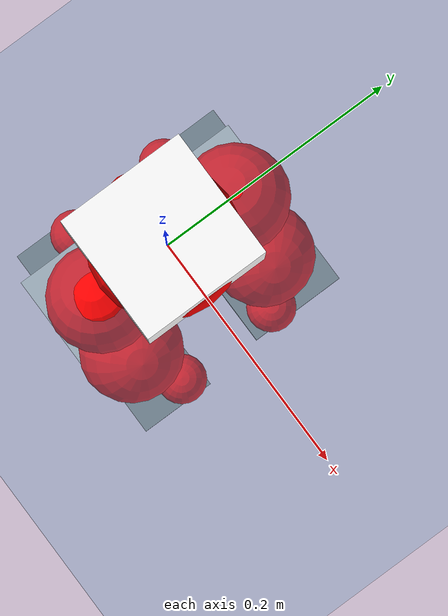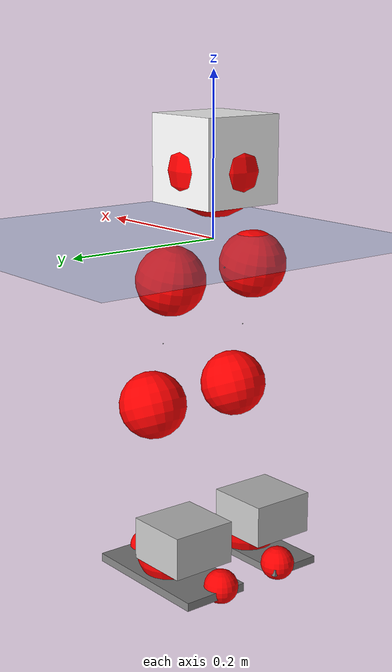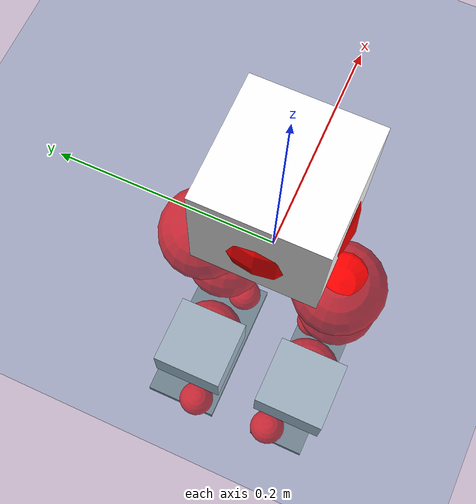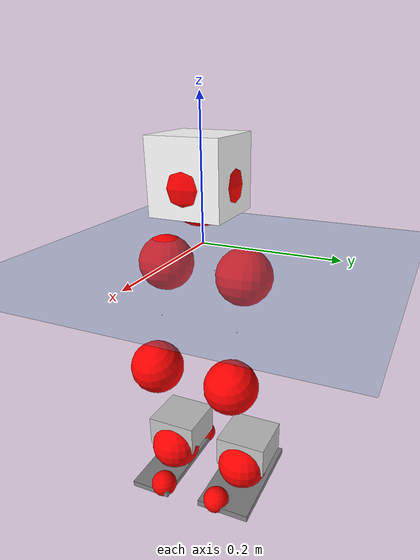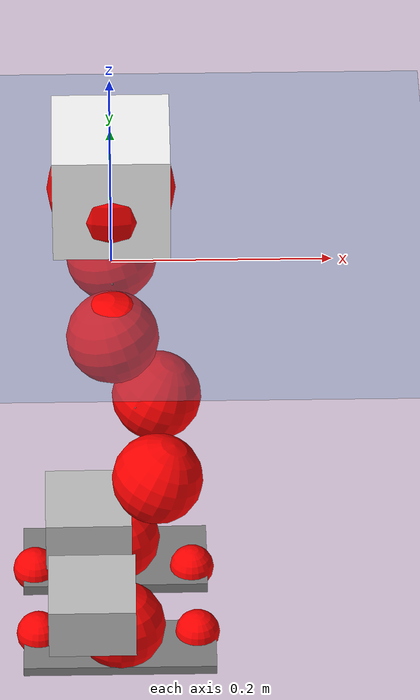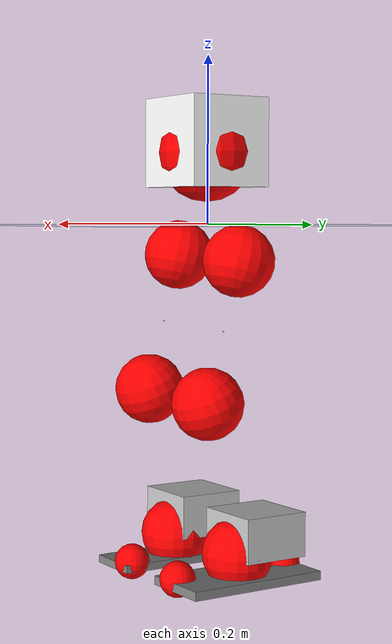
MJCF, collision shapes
<mujoco model="pi_12dof_release_v1">
  <compiler angle="radian" assetdir="assets" balanceinertia="true" inertiafromgeom="false"/>

  <option timestep="0.005" density="1.2" viscosity="2e-05"/>

  <size nkey="1"/>

  <visual>
    <quality shadowsize="8192"/>
    <map shadowclip="0.5"/>
  </visual>

  <default>
    <default class="/">
      <joint armature="0.01" damping="0.01" frictionloss="0.01"/>
      <geom contype="0" conaffinity="0" group="1" solref="-1000 -80"/>
      <site size="0.01 0.005 0.005" group="5"/>
      <general forcelimited="true" biastype="affine" gainprm="20" biasprm="0 -20 -0.5"/>
      <default class="foot">
        <geom size="0.0845 0.036 0.005" type="box" condim="6" group="4" priority="1" friction="0.9 0.2 0.2" solimp="0.015 1 0.005"/>
      </default>
      <default class="reward_collision_sphere">
        <geom group="5" rgba="1 0 0 1"/>
      </default>
    </default>
  </default>

  <asset>
    <texture type="skybox" colorspace="auto" name="//unnamed_texture_0" builtin="gradient" rgb1="0.95 0.95 0.95" rgb2="0.95 0.95 0.95" width="100" height="600"/>
    <texture type="2d" colorspace="auto" name="texplane" builtin="checker" rgb1="0.345 0.575 0.748" rgb2="0.345 0.575 0.748" markrgb="1 1 1" width="512" height="512"/>
    <material name="MatPlane" class="/" texture="texplane" texuniform="true" texrepeat="2 2" specular="0.9"/>
    <mesh name="baselink_1" class="/" file="baselink_1.STL"/>
    <mesh name="r_hip_pitch_link" class="/" file="r_hip_pitch_link.STL"/>
    <mesh name="r_hip_roll_link" class="/" file="r_hip_roll_link.STL"/>
    <mesh name="r_thigh_link" class="/" file="r_thigh_link.STL"/>
    <mesh name="r_calf_link" class="/" file="r_calf_link.STL"/>
    <mesh name="r_ankle_pitch_link" class="/" file="r_ankle_pitch_link.STL"/>
    <mesh name="r_ankle_roll_link" class="/" file="r_ankle_roll_link.STL"/>
    <mesh name="l_hip_pitch_link" class="/" file="l_hip_pitch_link.STL"/>
    <mesh name="l_hip_roll_link" class="/" file="l_hip_roll_link.STL"/>
    <mesh name="l_thigh_link" class="/" file="l_thigh_link.STL"/>
    <mesh name="l_calf_link" class="/" file="l_calf_link.STL"/>
    <mesh name="l_ankle_pitch_link" class="/" file="l_ankle_pitch_link.STL"/>
    <mesh name="l_ankle_roll_link" class="/" file="l_ankle_roll_link.STL"/>
  </asset>

  <worldbody>
    <geom name="floor" class="/" size="100 100 0.125" type="plane" group="0" material="MatPlane"/>
    <light name="toplight_shadow" class="/" pos="0 0 5" dir="0.0990148 0.0990148 -0.990148" type="directional" ambient="0.04 0.04 0.04" diffuse="0.55 0.55 0.55" specular="0.12 0.12 0.12"/>
    <light name="toplight_fill" class="/" pos="0 0 5" dir="0.0990148 0.0990148 -0.990148" type="directional" castshadow="false" ambient="0.04 0.04 0.04" diffuse="0.3 0.3 0.3" specular="0.08 0.08 0.08"/>
    <body name="trunk" pos="0.000331983 -0.00237715 1.14668e-05" quat="1 -3.89512e-05 3.52534e-06 -1.07923e-05">
      <inertial pos="0.0019357 -0.00306673 0.0487109" quat="0.693775 0.00508477 0.0208 0.719873" mass="2.49426" diaginertia="0.0167521 0.0037197 0.0105938"/>
      <joint name="//unnamed_joint_0" type="free"/>
      <geom name="//unnamed_geom_1" class="/" type="mesh" density="0" rgba="1 1 1 1" mesh="baselink_1"/>
      <geom name="//unnamed_geom_2" class="/" size="0.0527167 0.0527167 0.0527167" pos="0 0 0.0965205" type="box" rgba="1 1 1 1"/>
      <geom name="//unnamed_geom_3" class="reward_collision_sphere" size="0.0579884" pos="0 0 0.0844554"/>
      <site name="imu" class="/" pos="0.0113523 0.00577714 -0.0118511" size="0.0105433"/>
      <camera name="track" class="/" pos="0 -1.68132 0" quat="0.707107 0.707107 0 0" mode="trackcom"/>
      <camera name="ego_camera" class="/" pos="0.083688 0 0.217171" quat="-0.5 -0.5 0.5 0.5"/>
      <body name="r_hip_pitch_link" pos="0.00104483 -0.0166888 -0.0372232" quat="0.992062 -0.000381745 -0.125745 -0.000213362">
        <inertial pos="0.00116876 -0.0466158 0.0012173" quat="-0.0191051 0.706658 -0.0278201 0.70675" mass="0.418568" diaginertia="0.000187497 3.94818e-05 0.000212964"/>
        <joint name="r_hip_pitch_joint" class="/" pos="0 0 0" axis="-0.00200932 -0.999982 -0.00560845" stiffness="0.000145994" range="-1.75596 1.22742" armature="0.0107411" damping="0.0127381" frictionloss="0.0110947"/>
        <geom name="//unnamed_geom_4" class="/" type="mesh" density="0" rgba="0.75294 0.75294 0.75294 1" mesh="r_hip_pitch_link"/>
        <geom name="//unnamed_geom_5" class="/" size="0.000527167 0.000527167 0.000527167" type="box" rgba="0.75294 0.75294 0.75294 1"/>
        <body name="r_hip_roll_link" pos="-0.00124213 -0.0446024 -0.000370387" quat="0.999999 -0.00040868 -0.0010181 0.000111515">
          <inertial pos="0.000997452 0.0012805 -0.0744931" quat="0.706124 -0.0831833 -0.069843 0.699708" mass="0.455106" diaginertia="0.00058104 0.000117855 0.00033383"/>
          <joint name="r_hip_roll_joint" class="/" pos="0 0 0" axis="-0.999969 -0.00672526 0.00419454" range="-0.125207 0.54769" armature="0.00951219" damping="0.0113209" frictionloss="0.0103534"/>
          <geom name="//unnamed_geom_6" class="/" type="mesh" density="0" rgba="0.75294 0.75294 0.75294 1" mesh="r_hip_roll_link"/>
          <geom name="//unnamed_geom_7" class="/" size="0.000527167 0.000527167 0.000527167" type="box" rgba="0.75294 0.75294 0.75294 1"/>
          <geom name="//unnamed_geom_8" class="reward_collision_sphere" size="0.0421734"/>
          <body name="r_thigh_link" pos="-0.000736148 -0.0021881 -0.0835765" quat="1 -0.000540904 0.000293974 0.000201711">
            <inertial pos="0.00245892 0.000613493 -0.0598977" quat="0.736498 0.676439 0.00046925 0.000998402" mass="0.132326" diaginertia="0.000209039 4.09218e-05 0.000142482"/>
            <joint name="r_thigh_joint" class="/" pos="0 0 0" axis="-0.00518814 0.00060669 -0.999986" range="-0.341575 0.59703" armature="0.0105268" damping="0.00560374" frictionloss="0.0105062"/>
            <geom name="//unnamed_geom_9" class="/" type="mesh" density="0" rgba="0.75294 0.75294 0.75294 1" mesh="r_thigh_link"/>
            <geom name="//unnamed_geom_10" class="/" size="0.000527167 0.000527167 0.000527167" type="box" rgba="0.75294 0.75294 0.75294 1"/>
            <body name="r_calf_link" pos="-0.0017341 -0.00153368 -0.0850154" quat="0.947673 -0.000180579 0.319244 -4.51347e-05">
              <inertial pos="-0.000342035 -0.00187307 -0.0852692" quat="0.99997 -0.00484213 -0.000157342 0.00599076" mass="0.922795" diaginertia="0.00615969 0.00142531 0.000460604"/>
              <joint name="r_calf_joint" class="/" pos="0 0 0" axis="0.00476058 -0.999982 0.00368563" range="-1.60073 0.665201" armature="0.0110946" damping="0.00932698" frictionloss="0.0108849"/>
              <geom name="//unnamed_geom_11" class="/" type="mesh" density="0" rgba="0.75294 0.75294 0.75294 1" mesh="r_calf_link"/>
              <geom name="//unnamed_geom_12" class="/" size="0.000527167 0.000527167 0.000527167" type="box" rgba="0.75294 0.75294 0.75294 1"/>
              <geom name="//unnamed_geom_13" class="reward_collision_sphere" size="0.0421734"/>
              <body name="r_ankle_pitch_link" pos="0.00330423 0.00287018 -0.167861" quat="0.980084 -2.88735e-05 -0.198581 4.73351e-05">
                <inertial pos="0.00453009 0.000469706 -0.00033554" quat="0.00051482 0.702333 -0.00132339 0.711847" mass="0.218312" diaginertia="0.000550465 9.59552e-05 0.00031713"/>
                <joint name="r_ankle_pitch_joint" class="/" pos="0 0 0" axis="0.00311974 -0.999897 -0.0140279" range="-1.28679 0.555523" armature="0.0107763" damping="0.0179921" frictionloss="0.0107434"/>
                <geom name="//unnamed_geom_14" class="/" type="mesh" density="0" rgba="0.75294 0.75294 0.75294 1" mesh="r_ankle_pitch_link"/>
                <geom name="//unnamed_geom_15" class="/" size="0.0411191 0.0421734 0.0263584" type="box" rgba="0.75294 0.75294 0.75294 1"/>
                <body name="r_ankle_roll_link" pos="0.082626 0.00138589 -0.00156536" quat="0.999999 -3.85608e-05 0.00114637 -0.000716298">
                  <inertial pos="-0.0266952 -0.000115221 -0.0156048" quat="0.555162 0.430919 0.43282 0.564597" mass="0.608839" diaginertia="0.00193293 0.000432968 0.000718113"/>
                  <joint name="r_ankle_roll_joint" class="/" pos="0 0 0" axis="-0.999998 -0.00137554 -0.00116746" range="-0.203351 0.149738" armature="0.0103444" damping="0.0110083" frictionloss="0.0101395"/>
                  <geom name="//unnamed_geom_16" class="/" type="mesh" density="0" rgba="0.75294 0.75294 0.75294 1" mesh="r_ankle_roll_link"/>
                  <geom name="//unnamed_geom_17" class="/" type="mesh" rgba="0.75294 0.75294 0.75294 1" mesh="r_ankle_roll_link"/>
                  <geom name="right_foot" class="foot" size="0.0911355 0.0335376 0.00466613" pos="-0.0569078 0 -0.0530863"/>
                  <geom name="//unnamed_geom_19" class="reward_collision_sphere" size="0.0421734" pos="-0.055792 0 -0.0241301"/>
                  <geom name="//unnamed_geom_20" class="reward_collision_sphere" size="0.0210867" pos="0.0167376 0.0168132 -0.0482602"/>
                  <geom name="//unnamed_geom_21" class="reward_collision_sphere" size="0.0210867" pos="-0.133901 0.0168132 -0.0482602"/>
                  <site name="right_foot" class="foot" pos="-0.0569078 0 -0.0530863" size="0.0105433"/>
                </body>
              </body>
            </body>
          </body>
        </body>
      </body>
      <body name="l_hip_pitch_link" pos="0.000166876 0.0191415 -0.0398606" quat="0.99216 -1.04896e-05 -0.124976 3.91318e-05">
        <inertial pos="0.00102244 0.0427347 0.000284802" quat="-0.0380405 0.707273 0.0257713 0.705445" mass="0.451874" diaginertia="0.000221798 4.41925e-05 0.000258568"/>
        <joint name="l_hip_pitch_joint" class="/" pos="0 0 0" axis="-0.000397717 1 0.000374794" stiffness="0.00889717" range="-1.25162 1.7536" armature="0.0102001" damping="0" frictionloss="0.0115142"/>
        <geom name="//unnamed_geom_22" class="/" type="mesh" density="0" rgba="0.75294 0.75294 0.75294 1" mesh="l_hip_pitch_link"/>
        <geom name="//unnamed_geom_23" class="/" size="0.000527167 0.000527167 0.000527167" type="box" rgba="0.75294 0.75294 0.75294 1"/>
        <body name="l_hip_roll_link" pos="-0.00100342 0.0473525 -0.0024884" quat="1 -1.68428e-05 8.59956e-05 0.000262164">
          <inertial pos="-0.00228726 3.0613e-05 -0.0762643" quat="0.702526 -0.0791068 -0.0772667 0.703015" mass="0.467761" diaginertia="0.000581097 0.000116066 0.000327093"/>
          <joint name="l_hip_roll_joint" class="/" pos="0 0 0" axis="-0.99995 -0.00272477 -0.00961849" range="-0.555403 0.12478" armature="0.0118555" damping="0.00260831" frictionloss="0.0103633"/>
          <geom name="//unnamed_geom_24" class="/" type="mesh" density="0" rgba="0.75294 0.75294 0.75294 1" mesh="l_hip_roll_link"/>
          <geom name="//unnamed_geom_25" class="/" size="0.000527167 0.000527167 0.000527167" type="box" rgba="0.75294 0.75294 0.75294 1"/>
          <geom name="//unnamed_geom_26" class="reward_collision_sphere" size="0.0421734"/>
          <body name="l_thigh_link" pos="-0.00144318 -0.00285706 -0.0832753" quat="1 0.000275554 -0.000329065 -0.000150118">
            <inertial pos="-3.4911e-05 -0.00119812 -0.0560801" quat="0.675377 0.737469 0.00163399 -0.00183505" mass="0.136883" diaginertia="0.000227339 4.01989e-05 0.000151078"/>
            <joint name="l_thigh_joint" class="/" pos="0 0 0" axis="-0.000853397 0.000447342 -1" range="-0.612636 0.299664" armature="0.00968599" damping="0.00829229" frictionloss="0.0104633"/>
            <geom name="//unnamed_geom_27" class="/" type="mesh" density="0" rgba="0.75294 0.75294 0.75294 1" mesh="l_thigh_link"/>
            <geom name="//unnamed_geom_28" class="/" size="0.000527167 0.000527167 0.000527167" type="box" rgba="0.75294 0.75294 0.75294 1"/>
            <body name="l_calf_link" pos="0.000373158 -3.71398e-05 -0.0856163" quat="0.94791 0.000843943 0.318538 0.000519182">
              <inertial pos="-0.000471972 0.0052144 -0.0866563" quat="0.999982 -0.00130875 0.00266074 0.00524429" mass="0.974428" diaginertia="0.00635822 0.0014848 0.000468356"/>
              <joint name="l_calf_joint" class="/" pos="0 0 0" axis="-0.00972083 0.999953 -0.000167653" range="-0.671281 1.65646" armature="0.0100892" damping="0.00349799" frictionloss="0.010271"/>
              <geom name="//unnamed_geom_29" class="/" type="mesh" density="0" rgba="0.75294 0.75294 0.75294 1" mesh="l_calf_link"/>
              <geom name="//unnamed_geom_30" class="/" size="0.000527167 0.000527167 0.000527167" type="box" rgba="0.75294 0.75294 0.75294 1"/>
              <geom name="//unnamed_geom_31" class="reward_collision_sphere" size="0.0421734"/>
              <body name="l_ankle_pitch_link" pos="-0.000177019 0.0036007 -0.168978" quat="0.980015 -0.00101808 -0.198917 0.000892499">
                <inertial pos="0.00514647 -0.0035016 0.00102049" quat="0.00122205 0.706678 0.00628906 0.707506" mass="0.204006" diaginertia="0.000523646 9.21341e-05 0.000300714"/>
                <joint name="l_ankle_pitch_joint" class="/" pos="0 0 0" axis="0.00241067 0.999996 0.00141977" range="-0.557314 1.33932" armature="0.0104351" damping="0.00268294" frictionloss="0.0104968"/>
                <geom name="//unnamed_geom_32" class="/" type="mesh" density="0" rgba="0.75294 0.75294 0.75294 1" mesh="l_ankle_pitch_link"/>
                <geom name="//unnamed_geom_33" class="/" size="0.0411191 0.0421734 0.0263584" type="box" rgba="0.75294 0.75294 0.75294 1"/>
                <body name="l_ankle_roll_link" pos="0.0817103 1.668e-05 0.00142777" quat="1 -0.000151935 -8.0872e-05 -0.000196112">
                  <inertial pos="-0.0243437 -0.000601093 -0.0168132" quat="0.56063 0.430836 0.434471 0.557951" mass="0.605305" diaginertia="0.00202527 0.000437849 0.000714898"/>
                  <joint name="l_ankle_roll_joint" class="/" pos="0 0 0" axis="-0.999913 0.0124385 -0.00445774" range="-0.0997805 0.108167" armature="0.0119066" damping="0.0243125" frictionloss="0.00914915"/>
                  <geom name="//unnamed_geom_34" class="/" type="mesh" density="0" rgba="0.75294 0.75294 0.75294 1" mesh="l_ankle_roll_link"/>
                  <geom name="//unnamed_geom_35" class="/" type="mesh" rgba="0.75294 0.75294 0.75294 1" mesh="l_ankle_roll_link"/>
                  <geom name="left_foot" class="foot" size="0.0884211 0.0433472 0.00524148" pos="-0.0569078 0 -0.0530863"/>
                  <geom name="//unnamed_geom_37" class="reward_collision_sphere" size="0.0421734" pos="-0.055792 0 -0.0241301"/>
                  <geom name="//unnamed_geom_38" class="reward_collision_sphere" size="0.0210867" pos="0.0167376 -0.0168132 -0.0482602"/>
                  <geom name="//unnamed_geom_39" class="reward_collision_sphere" size="0.0210867" pos="-0.133901 -0.0168132 -0.0482602"/>
                  <site name="left_foot" class="foot" pos="-0.0569078 0 -0.0530863" size="0.0105433"/>
                </body>
              </body>
            </body>
          </body>
        </body>
      </body>
    </body>
  </worldbody>

  <contact>
    <pair class="/" geom1="floor" geom2="right_foot" name="//unnamed_contact_1"/>
    <pair class="/" geom1="floor" geom2="left_foot" name="//unnamed_contact_0"/>
  </contact>

  <actuator>
    <general name="r_hip_pitch_joint" class="/" joint="r_hip_pitch_joint" forcerange="-23.0036 23.0036" gainprm="20.4398" biasprm="0 -20.4398 -0.537163"/>
    <general name="r_hip_roll_joint" class="/" joint="r_hip_roll_joint" forcerange="-22.3077 22.3077" gainprm="20.4398" biasprm="0 -20.4398 -0.537163"/>
    <general name="r_thigh_joint" class="/" joint="r_thigh_joint" forcerange="-23.7933 23.7933" gainprm="20.4398" biasprm="0 -20.4398 -0.537163"/>
    <general name="r_calf_joint" class="/" joint="r_calf_joint" forcerange="-19.8716 19.8716" gainprm="20.4398" biasprm="0 -20.4398 -0.537163"/>
    <general name="r_ankle_pitch_joint" class="/" joint="r_ankle_pitch_joint" forcerange="-24.3959 24.3959" gainprm="20.4398" biasprm="0 -20.4398 -0.537163"/>
    <general name="r_ankle_roll_joint" class="/" joint="r_ankle_roll_joint" forcerange="-24.4027 24.4027" gainprm="20.4398" biasprm="0 -20.4398 -0.537163"/>
    <general name="l_hip_pitch_joint" class="/" joint="l_hip_pitch_joint" forcerange="-24.2398 24.2398" gainprm="20.4398" biasprm="0 -20.4398 -0.537163"/>
    <general name="l_hip_roll_joint" class="/" joint="l_hip_roll_joint" forcerange="-20.6206 20.6206" gainprm="20.4398" biasprm="0 -20.4398 -0.537163"/>
    <general name="l_thigh_joint" class="/" joint="l_thigh_joint" forcerange="-22.8043 22.8043" gainprm="20.4398" biasprm="0 -20.4398 -0.537163"/>
    <general name="l_calf_joint" class="/" joint="l_calf_joint" forcerange="-24.3923 24.3923" gainprm="20.4398" biasprm="0 -20.4398 -0.537163"/>
    <general name="l_ankle_pitch_joint" class="/" joint="l_ankle_pitch_joint" forcerange="-24.3887 24.3887" gainprm="20.4398" biasprm="0 -20.4398 -0.537163"/>
    <general name="l_ankle_roll_joint" class="/" joint="l_ankle_roll_joint" forcerange="-23.5981 23.5981" gainprm="20.4398" biasprm="0 -20.4398 -0.537163"/>
  </actuator>

  <sensor>
    <gyro site="imu" name="imu_angular_velocity"/>
    <velocimeter site="imu" name="imu_linear_velocity"/>
    <framelinvel objtype="site" objname="left_foot" name="left_foot_global_linear_velocity"/>
    <framelinvel objtype="site" objname="right_foot" name="right_foot_global_linear_velocity"/>
  </sensor>

  <keyframe>
    <key name="home" qpos="0 0 0.291 1 0 0 0 0.4 0 0 -0.8 0.4 0 -0.4 0 0 0.8 -0.4 0"/>
  </keyframe>
</mujoco>
